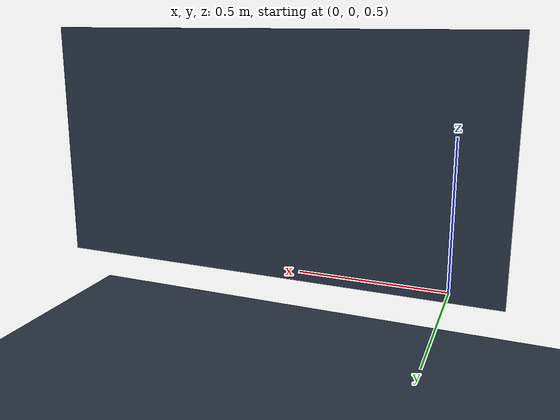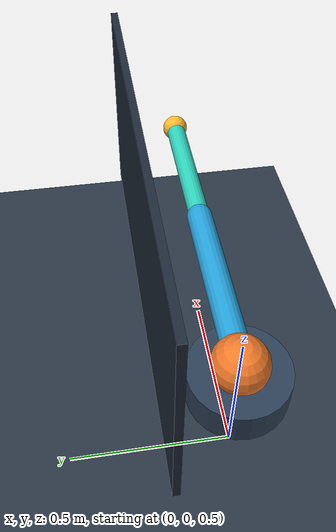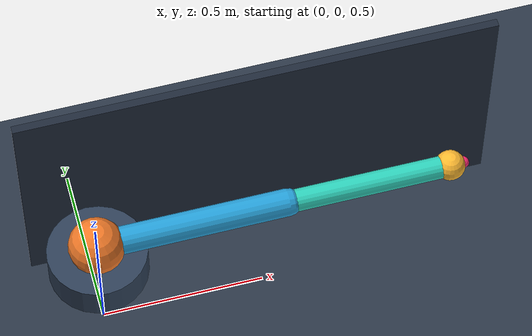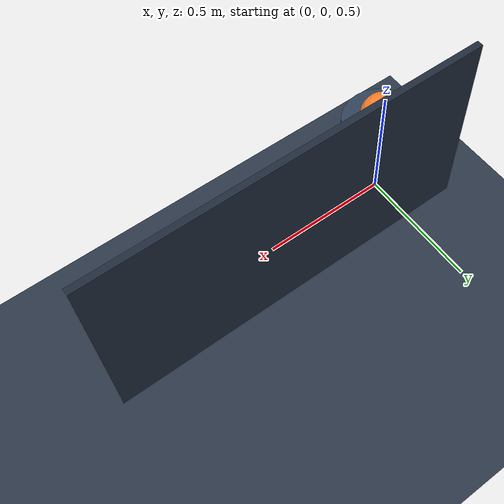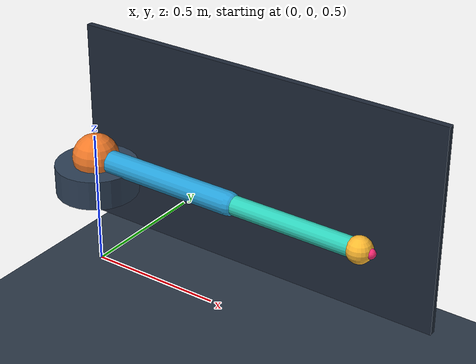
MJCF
<mujoco model="two-link haptic calligraphy arm">
  <compiler angle="radian" inertiafromgeom="true" autolimits="true"/>
  <option timestep="0.002" gravity="0 0 0" integrator="Euler"
      solver="PGS" iterations="80" tolerance="1e-8">
    <flag contact="disable" energy="disable"/>
  </option>
  <visual>
    <global offwidth="1280" offheight="900"/>
    <headlight ambient=".42 .42 .42" diffuse=".65 .65 .65"
        specular=".2 .2 .2"/>
    <rgba haze=".045 .07 .11 1"/>
  </visual>
  <asset>
    <texture name="checker" type="2d" builtin="checker" width="512" height="512"
        rgb1=".12 .15 .20" rgb2=".22 .28 .35"/>
    <material name="floor_mat" texture="checker" texrepeat="8 8" reflectance=".1"/>
  </asset>
  <worldbody>
    <light directional="true" pos="0 -2 5" dir="0 .25 -1"
        diffuse=".9 .9 .9" specular=".3 .3 .3"/>
    <light directional="true" pos="-3 1 2" dir="1 -.2 -.6"
        diffuse=".22 .32 .45" specular=".08 .08 .08"/>
    <geom name="floor" type="plane" size="3 2 .1" pos="0 0 .02"
        material="floor_mat" contype="0" conaffinity="0"/>
    <geom name="backdrop" type="box" size=".72 .012 .38"
        pos=".54 .20 .94" rgba=".12 .16 .22 1"
        contype="0" conaffinity="0"/>

    <body name="shoulder_mount" pos="0 0 .92">
      <geom type="cylinder" size=".15 .055" pos="0 0 -.08"
          rgba=".18 .25 .34 1" contype="0" conaffinity="0"/>
      <geom type="sphere" size=".085" rgba=".95 .48 .16 1"
          contype="0" conaffinity="0"/>
      <body name="upper_link">
        <joint name="shoulder" type="hinge" axis="0 1 0"
            damping=".035" armature=".012"/>
        <geom name="upper_arm" type="capsule" fromto="0 0 0 .58 0 0"
            size=".042" mass=".22" rgba=".15 .63 .85 1"
            contype="0" conaffinity="0"/>
        <body name="forearm_link" pos=".58 0 0">
          <joint name="elbow" type="hinge" axis="0 1 0"
              damping=".025" armature=".008"/>
          <geom name="forearm" type="capsule" fromto="0 0 0 .5 0 0"
              size=".034" mass=".15" rgba=".18 .82 .73 1"
              contype="0" conaffinity="0"/>
          <geom name="pen_nib" type="sphere" size=".046" pos=".5 0 0"
              mass=".025" rgba="1 .73 .19 1"
              contype="0" conaffinity="0"/>
          <site name="pen_tip" pos=".54 0 0" size=".018"
              rgba="1 .16 .46 1"/>
        </body>
      </body>
    </body>
  </worldbody>
  <sensor>
    <framepos name="pen_world_position" objtype="site" objname="pen_tip"/>
    <framelinvel name="pen_world_velocity" objtype="site" objname="pen_tip"/>
  </sensor>
</mujoco>
